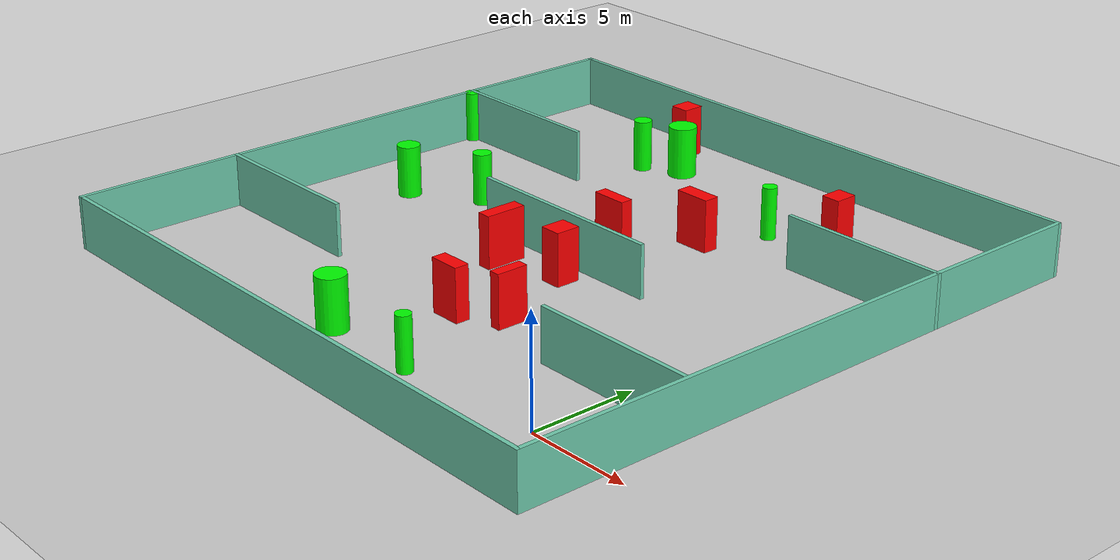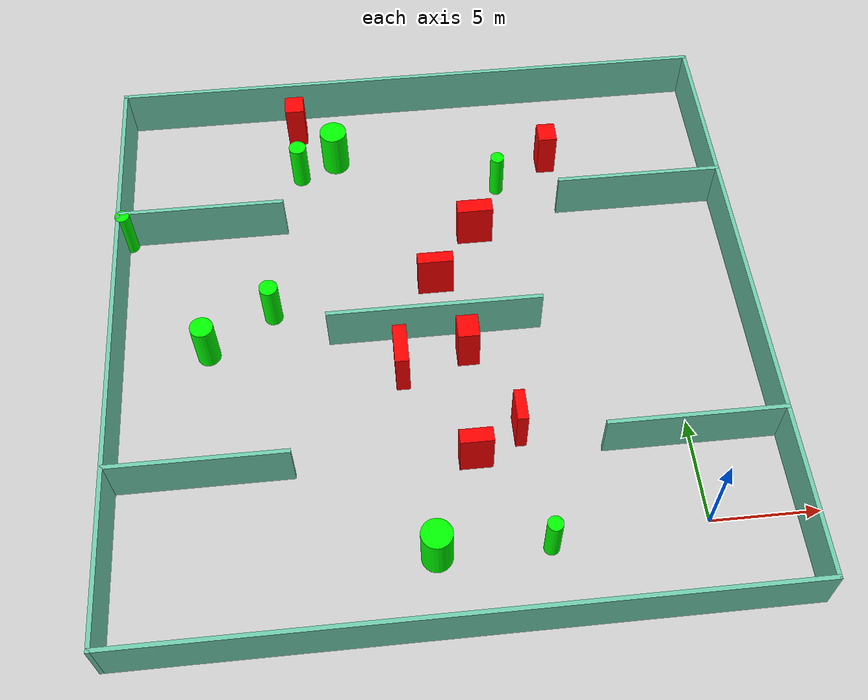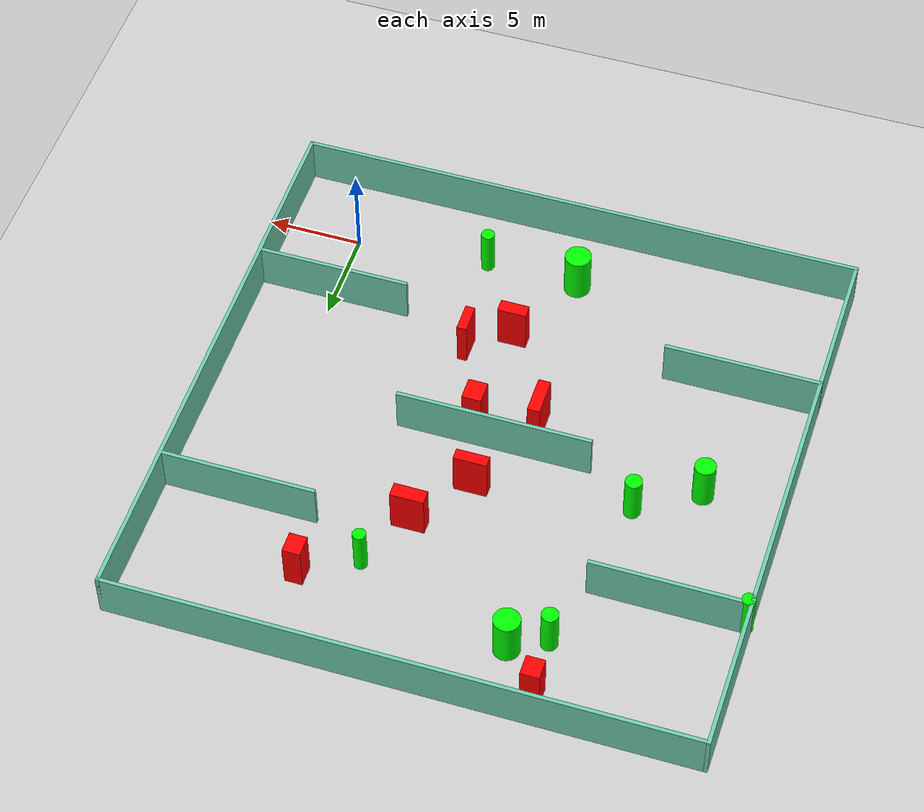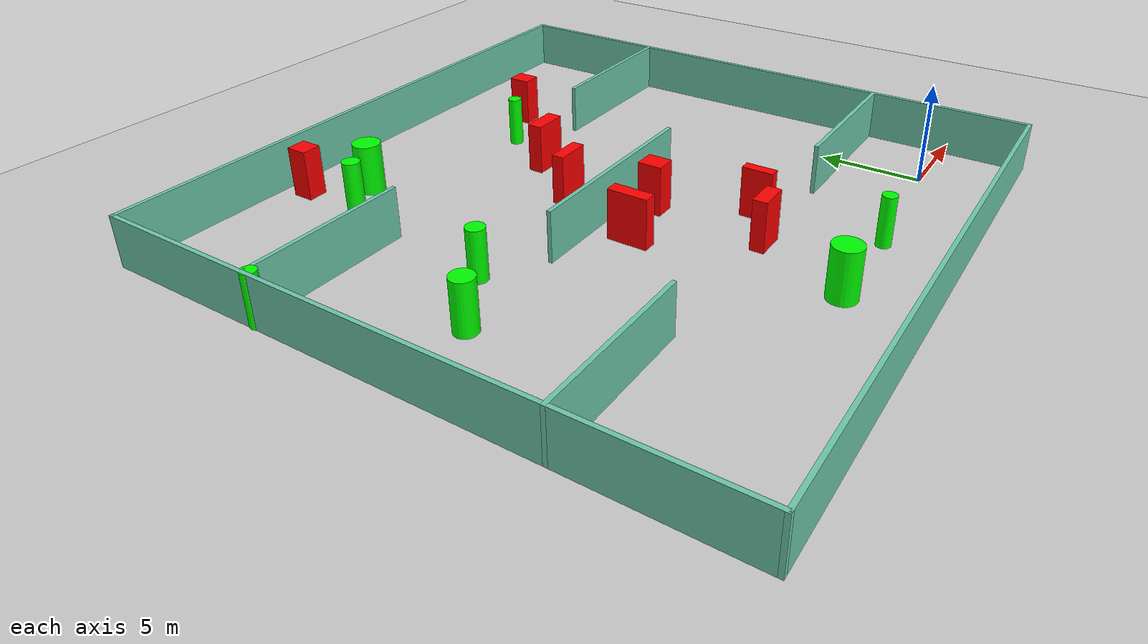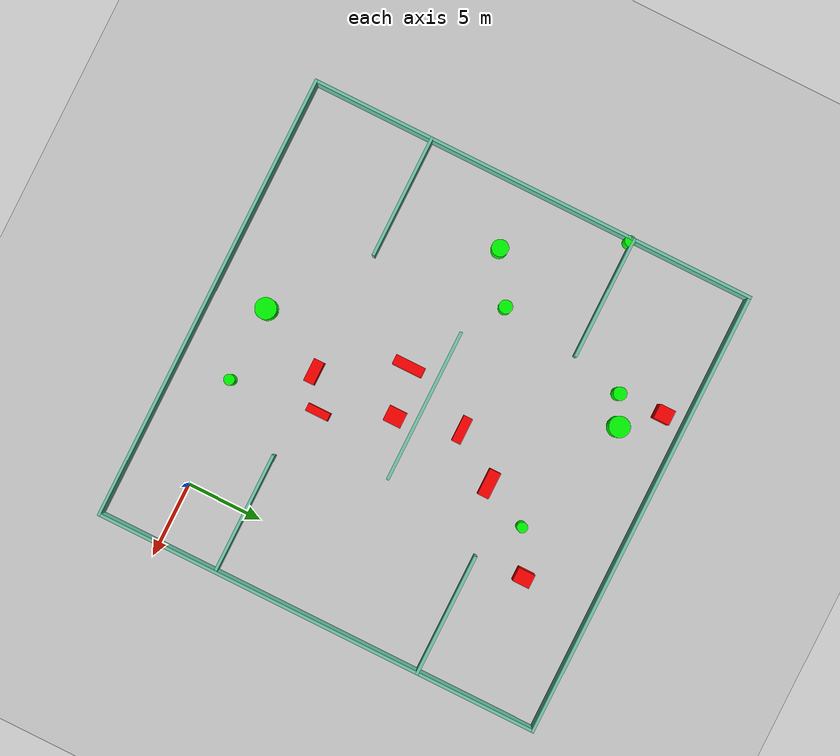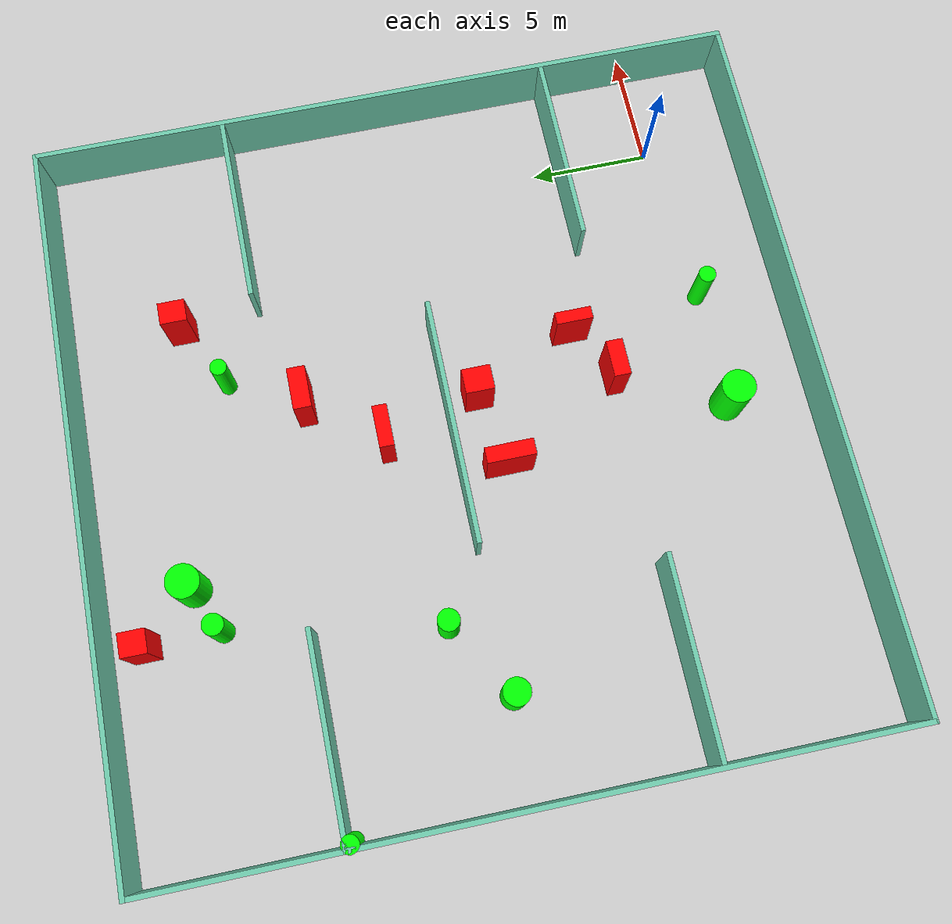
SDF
<sdf version="1.7">
 <world name="default">
  <light name="sun" type="directional">
   <pose>0 0 10 0 -0 0</pose>
   <diffuse>0.8 0.8 0.8 1</diffuse>
   <specular>0.2 0.2 0.2 1</specular>
   <attenuation>
    <range>1000</range>
    <constant>0.9</constant>
    <linear>0.01</linear>
    <quadratic>0.001</quadratic>
   </attenuation>
   <direction>-0.5 0.1 -0.9</direction>
   <spot><inner_angle>0</inner_angle><outer_angle>0</outer_angle><falloff>0</falloff></spot>
  </light>
  <model name="ground_plane">
   <static>1</static>
   <link name="link">
    <collision name="collision">
     <geometry><plane><normal>0 0 1</normal><size>100 100</size></plane></geometry>
     <surface>
      <contact><collide_bitmask>65535</collide_bitmask></contact>
      <friction><ode><mu>100</mu><mu2>50</mu2></ode></friction>
     </surface>
    </collision>
    <visual name="visual">
     <cast_shadows>0</cast_shadows>
     <geometry><plane><normal>0 0 1</normal><size>100 100</size></plane></geometry>
     <material>
      <script><uri>file://media/materials/scripts/gazebo.material</uri><name>Gazebo/Grey</name></script>
     </material>
    </visual>
   </link>
  </model>
  <gravity>0 0 -9.8</gravity>
  <magnetic_field>6e-06 2.3e-05 -4.2e-05</magnetic_field>
  <atmosphere type="adiabatic"/>
  <physics type="ode">
   <max_step_size>0.001</max_step_size>
   <real_time_factor>1</real_time_factor>
   <real_time_update_rate>1000</real_time_update_rate>
  </physics>
  <scene><ambient>0.4 0.4 0.4 1</ambient><background>0.7 0.7 0.7 1</background><shadows>1</shadows></scene>
  <spherical_coordinates>
   <surface_model>EARTH_WGS84</surface_model>
   <latitude_deg>0</latitude_deg>
   <longitude_deg>0</longitude_deg>
   <elevation>0</elevation>
   <heading_deg>0</heading_deg>
  </spherical_coordinates>
  <model name="my_base_walls">
   <link name="Wall_10">
    <collision name="Wall_10_Collision">
     <geometry><box><size>8.2 0.2 2.5</size></box></geometry>
     <pose>0 0 1.25 0 -0 0</pose>
    </collision>
    <visual name="Wall_10_Visual">
     <pose>0 0 1.25 0 -0 0</pose>
     <geometry><box><size>8.2 0.2 2.5</size></box></geometry>
     <material>
      <script><uri>file://media/materials/scripts/gazebo.material</uri><name>Gazebo/Grey</name></script>
      <ambient>0.435294 0.796078 0.67451 1</ambient>
     </material>
     <meta><layer>0</layer></meta>
    </visual>
    <pose>-11 -7 0 0 -0 0</pose>
   </link>
   <link name="Wall_12">
    <collision name="Wall_12_Collision">
     <geometry><box><size>8.2 0.2 2.5</size></box></geometry>
     <pose>0 0 1.25 0 -0 0</pose>
    </collision>
    <visual name="Wall_12_Visual">
     <pose>0 0 1.25 0 -0 0</pose>
     <geometry><box><size>8.2 0.2 2.5</size></box></geometry>
     <material>
      <script><uri>file://media/materials/scripts/gazebo.material</uri><name>Gazebo/Grey</name></script>
      <ambient>0.435294 0.796078 0.67451 1</ambient>
     </material>
     <meta><layer>0</layer></meta>
    </visual>
    <pose>-11 7 0 0 -0 0</pose>
   </link>
   <link name="Wall_14">
    <collision name="Wall_14_Collision">
     <geometry><box><size>8.2 0.2 2.5</size></box></geometry>
     <pose>0 0 1.25 0 -0 0</pose>
    </collision>
    <visual name="Wall_14_Visual">
     <pose>0 0 1.25 0 -0 0</pose>
     <geometry><box><size>8.2 0.2 2.5</size></box></geometry>
     <material>
      <script><uri>file://media/materials/scripts/gazebo.material</uri><name>Gazebo/Grey</name></script>
      <ambient>0.435294 0.796078 0.67451 1</ambient>
     </material>
     <meta><layer>0</layer></meta>
    </visual>
    <pose>11 7 0 0 -0 3.14159</pose>
   </link>
   <link name="Wall_16">
    <collision name="Wall_16_Collision">
     <geometry><box><size>10.2 0.2 2.5</size></box></geometry>
     <pose>0 0 1.25 0 -0 0</pose>
    </collision>
    <visual name="Wall_16_Visual">
     <pose>0 0 1.25 0 -0 0</pose>
     <geometry><box><size>10.2 0.2 2.5</size></box></geometry>
     <material>
      <script><uri>file://media/materials/scripts/gazebo.material</uri><name>Gazebo/Grey</name></script>
      <ambient>0.435294 0.796078 0.67451 1</ambient>
     </material>
     <meta><layer>0</layer></meta>
    </visual>
    <pose>0 0 0 0 -0 3.14159</pose>
   </link>
   <link name="Wall_2">
    <collision name="Wall_2_Collision">
     <geometry><box><size>30.2 0.2 2.5</size></box></geometry>
     <pose>0 0 1.25 0 -0 0</pose>
    </collision>
    <visual name="Wall_2_Visual">
     <pose>0 0 1.25 0 -0 0</pose>
     <geometry><box><size>30.2 0.2 2.5</size></box></geometry>
     <material>
      <script><uri>file://media/materials/scripts/gazebo.material</uri><name>Gazebo/Grey</name></script>
      <ambient>0.435294 0.796078 0.67451 1</ambient>
     </material>
     <meta><layer>0</layer></meta>
    </visual>
    <pose>0 -15 0 0 -0 3.14159</pose>
   </link>
   <link name="Wall_3">
    <collision name="Wall_3_Collision">
     <geometry><box><size>30.2 0.2 2.5</size></box></geometry>
     <pose>0 0 1.25 0 -0 0</pose>
    </collision>
    <visual name="Wall_3_Visual">
     <pose>0 0 1.25 0 -0 0</pose>
     <geometry><box><size>30.2 0.2 2.5</size></box></geometry>
     <material>
      <script><uri>file://media/materials/scripts/gazebo.material</uri><name>Gazebo/Grey</name></script>
      <ambient>0.435294 0.796078 0.67451 1</ambient>
     </material>
     <meta><layer>0</layer></meta>
    </visual>
    <pose>-15 0 0 0 -0 1.5708</pose>
   </link>
   <link name="Wall_4">
    <collision name="Wall_4_Collision">
     <geometry><box><size>30.2 0.2 2.5</size></box></geometry>
     <pose>0 0 1.25 0 -0 0</pose>
    </collision>
    <visual name="Wall_4_Visual">
     <pose>0 0 1.25 0 -0 0</pose>
     <geometry><box><size>30.2 0.2 2.5</size></box></geometry>
     <material>
      <script><uri>file://media/materials/scripts/gazebo.material</uri><name>Gazebo/Grey</name></script>
      <ambient>0.435294 0.796078 0.67451 1</ambient>
     </material>
     <meta><layer>0</layer></meta>
    </visual>
    <pose>0 15 0 0 -0 0</pose>
   </link>
   <link name="Wall_6">
    <collision name="Wall_6_Collision">
     <geometry><box><size>30.2 0.2 2.5</size></box></geometry>
     <pose>0 0 1.25 0 -0 0</pose>
    </collision>
    <visual name="Wall_6_Visual">
     <pose>0 0 1.25 0 -0 0</pose>
     <geometry><box><size>30.2 0.2 2.5</size></box></geometry>
     <material>
      <script><uri>file://media/materials/scripts/gazebo.material</uri><name>Gazebo/Grey</name></script>
      <ambient>0.435294 0.796078 0.67451 1</ambient>
     </material>
     <meta><layer>0</layer></meta>
    </visual>
    <pose>15 0 0 0 -0 1.5708</pose>
   </link>
   <link name="Wall_8">
    <collision name="Wall_8_Collision">
     <geometry><box><size>8.2 0.2 2.5</size></box></geometry>
     <pose>0 0 1.25 0 -0 0</pose>
    </collision>
    <visual name="Wall_8_Visual">
     <pose>0 0 1.25 0 -0 0</pose>
     <geometry><box><size>8.2 0.2 2.5</size></box></geometry>
     <material>
      <script><uri>file://media/materials/scripts/gazebo.material</uri><name>Gazebo/Grey</name></script>
      <ambient>0.435294 0.796078 0.67451 1</ambient>
     </material>
     <meta><layer>0</layer></meta>
    </visual>
    <pose>11 -7 0 0 -0 3.14159</pose>
   </link>
   <static>1</static>
   <pose>-11 11 0 0 -0 0</pose>
  </model>
  <model name="cylinder1">
   <static>1</static>
   <link name="link">
    <inertial>
     <mass>1</mass>
     <inertia><ixx>0.5</ixx><ixy>0</ixy><ixz>0</ixz><iyy>0.5</iyy><iyz>0</iyz><izz>1</izz></inertia>
    </inertial>
    <collision name="collision">
     <geometry><cylinder><radius>0.4436170317045594</radius><length>2.5</length></cylinder></geometry>
    </collision>
    <visual name="visual">
     <geometry><cylinder><radius>0.4436170317045594</radius><length>2.5</length></cylinder></geometry>
     <material>
      <ambient>0 1 0 1</ambient>
      <diffuse>0 1 0 1</diffuse>
      <specular>0.1 0.1 0.1 1</specular>
      <emissive>0 0 0 0</emissive>
     </material>
    </visual>
   </link>
   <pose>-18.727903720220837 12.756325188887901 1.25 0 0 0</pose>
  </model>
  <model name="cylinder2">
   <static>1</static>
   <link name="link">
    <inertial>
     <mass>1</mass>
     <inertia><ixx>0.5</ixx><ixy>0</ixy><ixz>0</ixz><iyy>0.5</iyy><iyz>0</iyz><izz>1</izz></inertia>
    </inertial>
    <collision name="collision">
     <geometry><cylinder><radius>0.6953128708318604</radius><length>2.5</length></cylinder></geometry>
    </collision>
    <visual name="visual">
     <geometry><cylinder><radius>0.6953128708318604</radius><length>2.5</length></cylinder></geometry>
     <material>
      <ambient>0 1 0 1</ambient>
      <diffuse>0 1 0 1</diffuse>
      <specular>0.1 0.1 0.1 1</specular>
      <emissive>0 0 0 0</emissive>
     </material>
    </visual>
   </link>
   <pose>-11.998286917723963 -0.4809001454095587 1.25 0 0 0</pose>
  </model>
  <model name="cylinder3">
   <static>1</static>
   <link name="link">
    <inertial>
     <mass>1</mass>
     <inertia><ixx>0.5</ixx><ixy>0</ixy><ixz>0</ixz><iyy>0.5</iyy><iyz>0</iyz><izz>1</izz></inertia>
    </inertial>
    <collision name="collision">
     <geometry><cylinder><radius>0.3556825674578995</radius><length>2.5</length></cylinder></geometry>
    </collision>
    <visual name="visual">
     <geometry><cylinder><radius>0.3556825674578995</radius><length>2.5</length></cylinder></geometry>
     <material>
      <ambient>0 1 0 1</ambient>
      <diffuse>0 1 0 1</diffuse>
      <specular>0.1 0.1 0.1 1</specular>
      <emissive>0 0 0 0</emissive>
     </material>
    </visual>
   </link>
   <pose>-25.80756922833178 17.818202528950373 1.25 0 0 0</pose>
  </model>
  <model name="cylinder4">
   <static>1</static>
   <link name="link">
    <inertial>
     <mass>1</mass>
     <inertia><ixx>0.5</ixx><ixy>0</ixy><ixz>0</ixz><iyy>0.5</iyy><iyz>0</iyz><izz>1</izz></inertia>
    </inertial>
    <collision name="collision">
     <geometry><cylinder><radius>0.6818189442504432</radius><length>2.5</length></cylinder></geometry>
    </collision>
    <visual name="visual">
     <geometry><cylinder><radius>0.6818189442504432</radius><length>2.5</length></cylinder></geometry>
     <material>
      <ambient>0 1 0 1</ambient>
      <diffuse>0 1 0 1</diffuse>
      <specular>0.1 0.1 0.1 1</specular>
      <emissive>0 0 0 0</emissive>
     </material>
    </visual>
   </link>
   <pose>-15.233500999851266 22.374819815937503 1.25 0 0 0</pose>
  </model>
  <model name="cylinder5">
   <static>1</static>
   <link name="link">
    <inertial>
     <mass>1</mass>
     <inertia><ixx>0.5</ixx><ixy>0</ixy><ixz>0</ixz><iyy>0.5</iyy><iyz>0</iyz><izz>1</izz></inertia>
    </inertial>
    <collision name="collision">
     <geometry><cylinder><radius>0.34397411401051836</radius><length>2.5</length></cylinder></geometry>
    </collision>
    <visual name="visual">
     <geometry><cylinder><radius>0.34397411401051836</radius><length>2.5</length></cylinder></geometry>
     <material>
      <ambient>0 1 0 1</ambient>
      <diffuse>0 1 0 1</diffuse>
      <specular>0.1 0.1 0.1 1</specular>
      <emissive>0 0 0 0</emissive>
     </material>
    </visual>
   </link>
   <pose>-6.978698937223143 19.7746223307394 1.25 0 0 0</pose>
  </model>
  <model name="cylinder6">
   <static>1</static>
   <link name="link">
    <inertial>
     <mass>1</mass>
     <inertia><ixx>0.5</ixx><ixy>0</ixy><ixz>0</ixz><iyy>0.5</iyy><iyz>0</iyz><izz>1</izz></inertia>
    </inertial>
    <collision name="collision">
     <geometry><cylinder><radius>0.43447695641666556</radius><length>2.5</length></cylinder></geometry>
    </collision>
    <visual name="visual">
     <geometry><cylinder><radius>0.43447695641666556</radius><length>2.5</length></cylinder></geometry>
     <material>
      <ambient>0 1 0 1</ambient>
      <diffuse>0 1 0 1</diffuse>
      <specular>0.1 0.1 0.1 1</specular>
      <emissive>0 0 0 0</emissive>
     </material>
    </visual>
   </link>
   <pose>-17.088838589068956 21.484417783794566 1.25 0 0 0</pose>
  </model>
  <model name="cylinder7">
   <static>1</static>
   <link name="link">
    <inertial>
     <mass>1</mass>
     <inertia><ixx>0.5</ixx><ixy>0</ixy><ixz>0</ixz><iyy>0.5</iyy><iyz>0</iyz><izz>1</izz></inertia>
    </inertial>
    <collision name="collision">
     <geometry><cylinder><radius>0.3532014650351379</radius><length>2.5</length></cylinder></geometry>
    </collision>
    <visual name="visual">
     <geometry><cylinder><radius>0.3532014650351379</radius><length>2.5</length></cylinder></geometry>
     <material>
      <ambient>0 1 0 1</ambient>
      <diffuse>0 1 0 1</diffuse>
      <specular>0.1 0.1 0.1 1</specular>
      <emissive>0 0 0 0</emissive>
     </material>
    </visual>
   </link>
   <pose>-7.049519645278229 -0.5309733582081995 1.25 0 0 0</pose>
  </model>
  <model name="cylinder8">
   <static>1</static>
   <link name="link">
    <inertial>
     <mass>1</mass>
     <inertia><ixx>0.5</ixx><ixy>0</ixy><ixz>0</ixz><iyy>0.5</iyy><iyz>0</iyz><izz>1</izz></inertia>
    </inertial>
    <collision name="collision">
     <geometry><cylinder><radius>0.5501542514415678</radius><length>2.5</length></cylinder></geometry>
    </collision>
    <visual name="visual">
     <geometry><cylinder><radius>0.5501542514415678</radius><length>2.5</length></cylinder></geometry>
     <material>
      <ambient>0 1 0 1</ambient>
      <diffuse>0 1 0 1</diffuse>
      <specular>0.1 0.1 0.1 1</specular>
      <emissive>0 0 0 0</emissive>
     </material>
    </visual>
   </link>
   <pose>-21.830336269142187 10.812350360072541 1.25 0 0 0</pose>
  </model>
  <model name="box1">
   <static>1</static>
   <link name="link">
    <inertial>
     <mass>1</mass>
     <inertia><ixx>0.083</ixx><ixy>0</ixy><ixz>0</ixz><iyy>0.083</iyy><iyz>0</iyz><izz>0.083</izz></inertia>
    </inertial>
    <collision name="collision">
     <geometry><box><size>1.023278579552711 1.1884221111370308 2.5</size></box></geometry>
    </collision>
    <visual name="visual">
     <geometry><box><size>1.023278579552711 1.1884221111370308 2.5</size></box></geometry>
     <material>
      <ambient>1 0 0 1</ambient>
      <diffuse>1 0 0 1</diffuse>
      <specular>0.1 0.1 0.1 1</specular>
      <emissive>0 0 0 0</emissive>
     </material>
    </visual>
    <sensor name="my_contact" type="contact">
     <contact><collision>box_collision</collision><topic>__default_topic__</topic></contact>
    </sensor>
   </link>
   <pose>-9.588118101916564 9.667209714787576 1.25 0 0 0</pose>
  </model>
  <model name="box2">
   <static>1</static>
   <link name="link">
    <inertial>
     <mass>1</mass>
     <inertia><ixx>0.083</ixx><ixy>0</ixy><ixz>0</ixz><iyy>0.083</iyy><iyz>0</iyz><izz>0.083</izz></inertia>
    </inertial>
    <collision name="collision">
     <geometry><box><size>0.9251732071192549 1.1031135829883945 2.5</size></box></geometry>
    </collision>
    <visual name="visual">
     <geometry><box><size>0.9251732071192549 1.1031135829883945 2.5</size></box></geometry>
     <material>
      <ambient>1 0 0 1</ambient>
      <diffuse>1 0 0 1</diffuse>
      <specular>0.1 0.1 0.1 1</specular>
      <emissive>0 0 0 0</emissive>
     </material>
    </visual>
    <sensor name="my_contact" type="contact">
     <contact><collision>box_collision</collision><topic>__default_topic__</topic></contact>
    </sensor>
   </link>
   <pose>-4.227808277180811 21.26717777245375 1.25 0 0 0</pose>
  </model>
  <model name="box3">
   <static>1</static>
   <link name="link">
    <inertial>
     <mass>1</mass>
     <inertia><ixx>0.083</ixx><ixy>0</ixy><ixz>0</ixz><iyy>0.083</iyy><iyz>0</iyz><izz>0.083</izz></inertia>
    </inertial>
    <collision name="collision">
     <geometry><box><size>0.9681189861203385 1.0634018073884144 2.5</size></box></geometry>
    </collision>
    <visual name="visual">
     <geometry><box><size>0.9681189861203385 1.0634018073884144 2.5</size></box></geometry>
     <material>
      <ambient>1 0 0 1</ambient>
      <diffuse>1 0 0 1</diffuse>
      <specular>0.1 0.1 0.1 1</specular>
      <emissive>0 0 0 0</emissive>
     </material>
    </visual>
    <sensor name="my_contact" type="contact">
     <contact><collision>box_collision</collision><topic>__default_topic__</topic></contact>
    </sensor>
   </link>
   <pose>-17.16926837973937 24.53195683904321 1.25 0 0 0</pose>
  </model>
  <model name="box4">
   <static>1</static>
   <link name="link">
    <inertial>
     <mass>1</mass>
     <inertia><ixx>0.083</ixx><ixy>0</ixy><ixz>0</ixz><iyy>0.083</iyy><iyz>0</iyz><izz>0.083</izz></inertia>
    </inertial>
    <collision name="collision">
     <geometry><box><size>0.5082636626090629 1.5109489324549876 2.5</size></box></geometry>
    </collision>
    <visual name="visual">
     <geometry><box><size>0.5082636626090629 1.5109489324549876 2.5</size></box></geometry>
     <material>
      <ambient>1 0 0 1</ambient>
      <diffuse>1 0 0 1</diffuse>
      <specular>0.1 0.1 0.1 1</specular>
      <emissive>0 0 0 0</emissive>
     </material>
    </visual>
    <sensor name="my_contact" type="contact">
     <contact><collision>box_collision</collision><topic>__default_topic__</topic></contact>
    </sensor>
   </link>
   <pose>-7.709430930834873 5.274469912668071 1.25 0 0 0</pose>
  </model>
  <model name="box5">
   <static>1</static>
   <link name="link">
    <inertial>
     <mass>1</mass>
     <inertia><ixx>0.083</ixx><ixy>0</ixy><ixz>0</ixz><iyy>0.083</iyy><iyz>0</iyz><izz>0.083</izz></inertia>
    </inertial>
    <collision name="collision">
     <geometry><box><size>1.75051344647348 0.7442244231760119 2.5</size></box></geometry>
    </collision>
    <visual name="visual">
     <geometry><box><size>1.75051344647348 0.7442244231760119 2.5</size></box></geometry>
     <material>
      <ambient>1 0 0 1</ambient>
      <diffuse>1 0 0 1</diffuse>
      <specular>0.1 0.1 0.1 1</specular>
      <emissive>0 0 0 0</emissive>
     </material>
    </visual>
    <sensor name="my_contact" type="contact">
     <contact><collision>box_collision</collision><topic>__default_topic__</topic></contact>
    </sensor>
   </link>
   <pose>-8.478632149650124 16.74674741038991 1.25 0 0 0</pose>
  </model>
  <model name="box6">
   <static>1</static>
   <link name="link">
    <inertial>
     <mass>1</mass>
     <inertia><ixx>0.083</ixx><ixy>0</ixy><ixz>0</ixz><iyy>0.083</iyy><iyz>0</iyz><izz>0.083</izz></inertia>
    </inertial>
    <collision name="collision">
     <geometry><box><size>1.5201395577817924 0.6909360119743014 2.5</size></box></geometry>
    </collision>
    <visual name="visual">
     <geometry><box><size>1.5201395577817924 0.6909360119743014 2.5</size></box></geometry>
     <material>
      <ambient>1 0 0 1</ambient>
      <diffuse>1 0 0 1</diffuse>
      <specular>0.1 0.1 0.1 1</specular>
      <emissive>0 0 0 0</emissive>
     </material>
    </visual>
    <sensor name="my_contact" type="contact">
     <contact><collision>box_collision</collision><topic>__default_topic__</topic></contact>
    </sensor>
   </link>
   <pose>-9.837156612245828 3.9367400986951413 1.25 0 0 0</pose>
  </model>
  <model name="box7">
   <static>1</static>
   <link name="link">
    <inertial>
     <mass>1</mass>
     <inertia><ixx>0.083</ixx><ixy>0</ixy><ixz>0</ixz><iyy>0.083</iyy><iyz>0</iyz><izz>0.083</izz></inertia>
    </inertial>
    <collision name="collision">
     <geometry><box><size>0.6555309020474679 1.9994269517161312 2.5</size></box></geometry>
    </collision>
    <visual name="visual">
     <geometry><box><size>0.6555309020474679 1.9994269517161312 2.5</size></box></geometry>
     <material>
      <ambient>1 0 0 1</ambient>
      <diffuse>1 0 0 1</diffuse>
      <specular>0.1 0.1 0.1 1</specular>
      <emissive>0 0 0 0</emissive>
     </material>
    </visual>
    <sensor name="my_contact" type="contact">
     <contact><collision>box_collision</collision><topic>__default_topic__</topic></contact>
    </sensor>
   </link>
   <pose>-12.761043295766358 9.034777366236625 1.25 0 0 0</pose>
  </model>
  <model name="box8">
   <static>1</static>
   <link name="link">
    <inertial>
     <mass>1</mass>
     <inertia><ixx>0.083</ixx><ixy>0</ixy><ixz>0</ixz><iyy>0.083</iyy><iyz>0</iyz><izz>0.083</izz></inertia>
    </inertial>
    <collision name="collision">
     <geometry><box><size>1.7392948615661106 0.602640590002019 2.5</size></box></geometry>
    </collision>
    <visual name="visual">
     <geometry><box><size>1.7392948615661106 0.602640590002019 2.5</size></box></geometry>
     <material>
      <ambient>1 0 0 1</ambient>
      <diffuse>1 0 0 1</diffuse>
      <specular>0.1 0.1 0.1 1</specular>
      <emissive>0 0 0 0</emissive>
     </material>
    </visual>
    <sensor name="my_contact" type="contact">
     <contact><collision>box_collision</collision><topic>__default_topic__</topic></contact>
    </sensor>
   </link>
   <pose>-10.722695983345792 13.75313640982706 1.25 0 0 0</pose>
  </model>
 </world>
</sdf>
